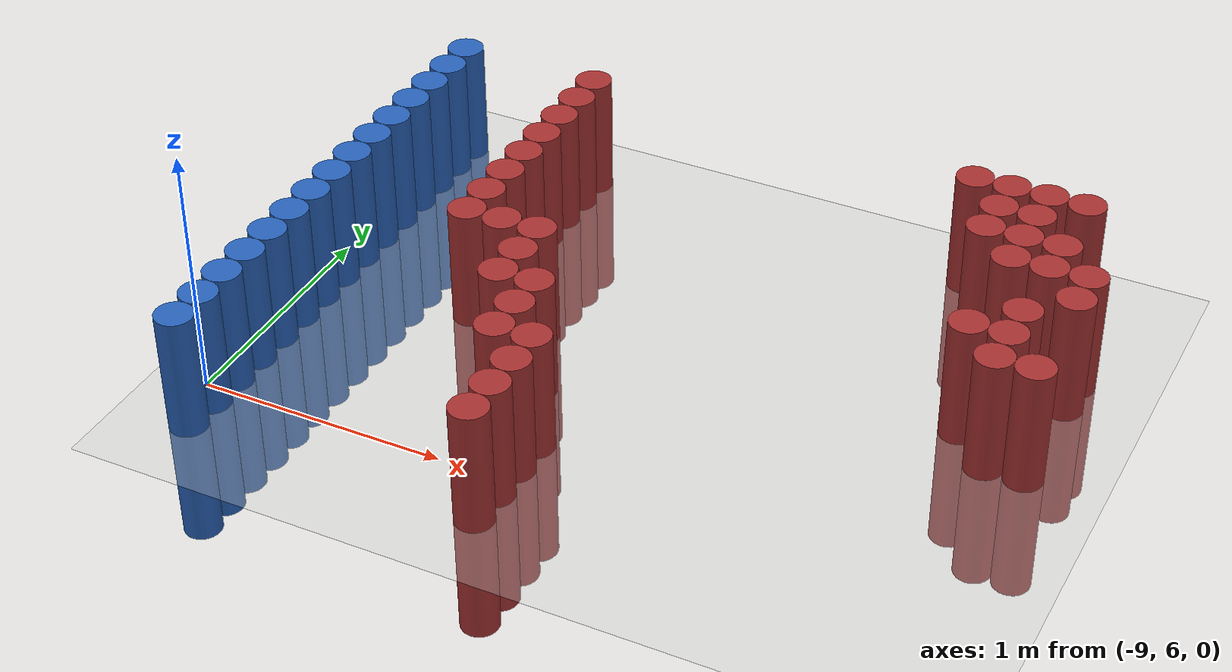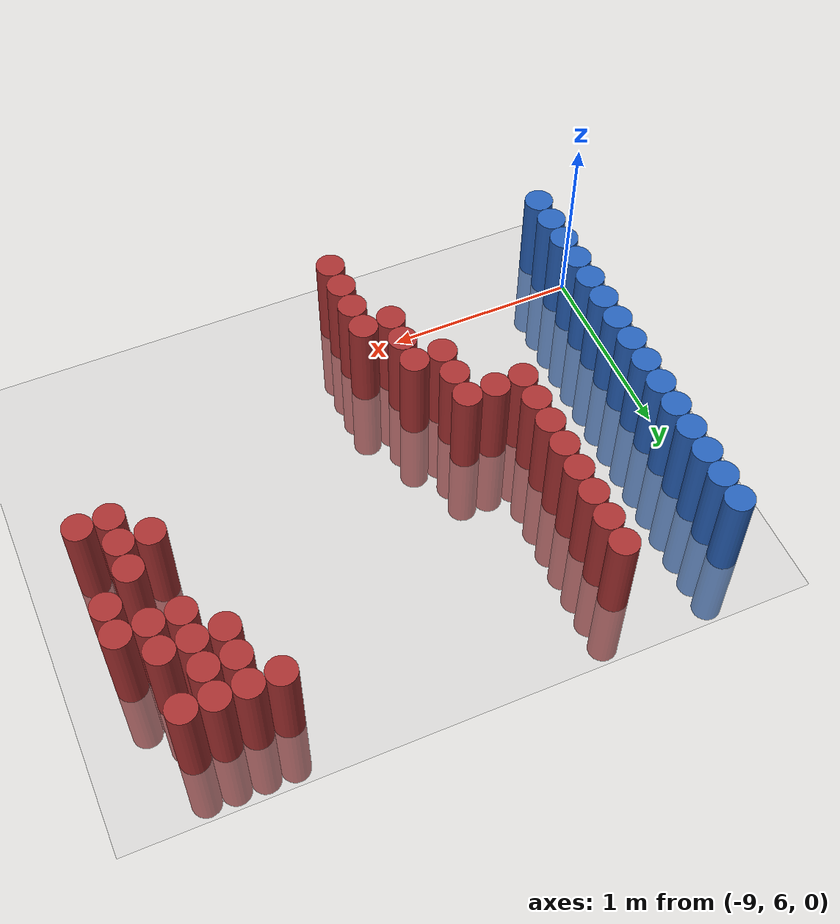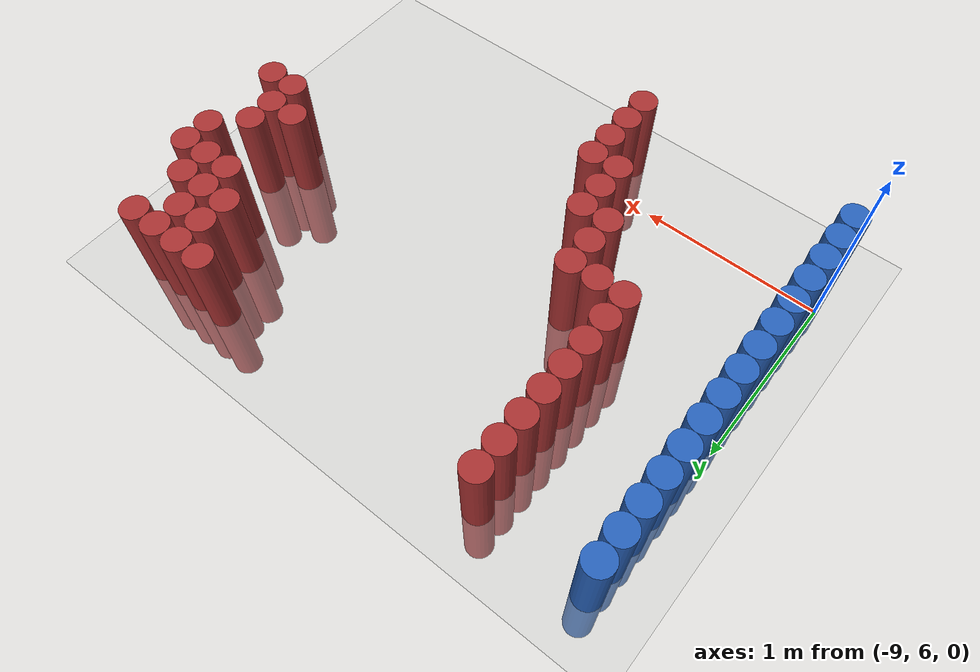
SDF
<sdf version="1.6">
 <world name="default">
  <model name="ground_plane">
   <static>1</static>
   <link name="link">
    <collision name="collision">
     <geometry><plane><normal>0 0 1</normal><size>100 100</size></plane></geometry>
     <surface><friction><ode><mu>100</mu><mu2>50</mu2></ode></friction></surface>
    </collision>
    <visual name="visual">
     <cast_shadows>0</cast_shadows>
     <geometry><plane><normal>0 0 1</normal><size>100 100</size></plane></geometry>
     <material>
      <script><uri>file://media/materials/scripts/gazebo.material</uri><name>Gazebo/Grey</name></script>
     </material>
    </visual>
   </link>
  </model>
  <model name="unit_cylinder_129">
   <static>1</static>
   <pose>-8.925000 5.775000 0.000000 0.000000 0.000000 0.000000</pose>
   <link name="link">
    <inertial>
     <mass>1</mass>
     <inertia><ixx>0.145833</ixx><ixy>0</ixy><ixz>0</ixz><iyy>0.145833</iyy><iyz>0</iyz><izz>0.125</izz></inertia>
    </inertial>
    <collision name="collision">
     <geometry><cylinder><radius>0.075000</radius><length>1</length></cylinder></geometry>
    </collision>
    <visual name="visual">
     <geometry><cylinder><radius>0.075000</radius><length>1</length></cylinder></geometry>
     <material>
      <ambient>0.152000 0.379000 0.720000 1</ambient>
      <diffuse>0.152000 0.379000 0.720000 1</diffuse>
     </material>
     <material>
      <script><name>Gazebo/Grey</name><uri>file://media/materials/scripts/gazebo.material</uri></script>
     </material>
    </visual>
   </link>
  </model>
  <model name="unit_cylinder_130">
   <static>1</static>
   <pose>-8.925000 5.925000 0.000000 0.000000 0.000000 0.000000</pose>
   <link name="link">
    <inertial>
     <mass>1</mass>
     <inertia><ixx>0.145833</ixx><ixy>0</ixy><ixz>0</ixz><iyy>0.145833</iyy><iyz>0</iyz><izz>0.125</izz></inertia>
    </inertial>
    <collision name="collision">
     <geometry><cylinder><radius>0.075000</radius><length>1</length></cylinder></geometry>
    </collision>
    <visual name="visual">
     <geometry><cylinder><radius>0.075000</radius><length>1</length></cylinder></geometry>
     <material>
      <ambient>0.152000 0.379000 0.720000 1</ambient>
      <diffuse>0.152000 0.379000 0.720000 1</diffuse>
     </material>
     <material>
      <script><name>Gazebo/Grey</name><uri>file://media/materials/scripts/gazebo.material</uri></script>
     </material>
    </visual>
   </link>
  </model>
  <model name="unit_cylinder_131">
   <static>1</static>
   <pose>-8.925000 6.075000 0.000000 0.000000 0.000000 0.000000</pose>
   <link name="link">
    <inertial>
     <mass>1</mass>
     <inertia><ixx>0.145833</ixx><ixy>0</ixy><ixz>0</ixz><iyy>0.145833</iyy><iyz>0</iyz><izz>0.125</izz></inertia>
    </inertial>
    <collision name="collision">
     <geometry><cylinder><radius>0.075000</radius><length>1</length></cylinder></geometry>
    </collision>
    <visual name="visual">
     <geometry><cylinder><radius>0.075000</radius><length>1</length></cylinder></geometry>
     <material>
      <ambient>0.152000 0.379000 0.720000 1</ambient>
      <diffuse>0.152000 0.379000 0.720000 1</diffuse>
     </material>
     <material>
      <script><name>Gazebo/Grey</name><uri>file://media/materials/scripts/gazebo.material</uri></script>
     </material>
    </visual>
   </link>
  </model>
  <model name="unit_cylinder_132">
   <static>1</static>
   <pose>-8.925000 6.225000 0.000000 0.000000 0.000000 0.000000</pose>
   <link name="link">
    <inertial>
     <mass>1</mass>
     <inertia><ixx>0.145833</ixx><ixy>0</ixy><ixz>0</ixz><iyy>0.145833</iyy><iyz>0</iyz><izz>0.125</izz></inertia>
    </inertial>
    <collision name="collision">
     <geometry><cylinder><radius>0.075000</radius><length>1</length></cylinder></geometry>
    </collision>
    <visual name="visual">
     <geometry><cylinder><radius>0.075000</radius><length>1</length></cylinder></geometry>
     <material>
      <ambient>0.152000 0.379000 0.720000 1</ambient>
      <diffuse>0.152000 0.379000 0.720000 1</diffuse>
     </material>
     <material>
      <script><name>Gazebo/Grey</name><uri>file://media/materials/scripts/gazebo.material</uri></script>
     </material>
    </visual>
   </link>
  </model>
  <model name="unit_cylinder_133">
   <static>1</static>
   <pose>-8.925000 6.375000 0.000000 0.000000 0.000000 0.000000</pose>
   <link name="link">
    <inertial>
     <mass>1</mass>
     <inertia><ixx>0.145833</ixx><ixy>0</ixy><ixz>0</ixz><iyy>0.145833</iyy><iyz>0</iyz><izz>0.125</izz></inertia>
    </inertial>
    <collision name="collision">
     <geometry><cylinder><radius>0.075000</radius><length>1</length></cylinder></geometry>
    </collision>
    <visual name="visual">
     <geometry><cylinder><radius>0.075000</radius><length>1</length></cylinder></geometry>
     <material>
      <ambient>0.152000 0.379000 0.720000 1</ambient>
      <diffuse>0.152000 0.379000 0.720000 1</diffuse>
     </material>
     <material>
      <script><name>Gazebo/Grey</name><uri>file://media/materials/scripts/gazebo.material</uri></script>
     </material>
    </visual>
   </link>
  </model>
  <model name="unit_cylinder_134">
   <static>1</static>
   <pose>-8.925000 6.525000 0.000000 0.000000 0.000000 0.000000</pose>
   <link name="link">
    <inertial>
     <mass>1</mass>
     <inertia><ixx>0.145833</ixx><ixy>0</ixy><ixz>0</ixz><iyy>0.145833</iyy><iyz>0</iyz><izz>0.125</izz></inertia>
    </inertial>
    <collision name="collision">
     <geometry><cylinder><radius>0.075000</radius><length>1</length></cylinder></geometry>
    </collision>
    <visual name="visual">
     <geometry><cylinder><radius>0.075000</radius><length>1</length></cylinder></geometry>
     <material>
      <ambient>0.152000 0.379000 0.720000 1</ambient>
      <diffuse>0.152000 0.379000 0.720000 1</diffuse>
     </material>
     <material>
      <script><name>Gazebo/Grey</name><uri>file://media/materials/scripts/gazebo.material</uri></script>
     </material>
    </visual>
   </link>
  </model>
  <model name="unit_cylinder_135">
   <static>1</static>
   <pose>-8.925000 6.675000 0.000000 0.000000 0.000000 0.000000</pose>
   <link name="link">
    <inertial>
     <mass>1</mass>
     <inertia><ixx>0.145833</ixx><ixy>0</ixy><ixz>0</ixz><iyy>0.145833</iyy><iyz>0</iyz><izz>0.125</izz></inertia>
    </inertial>
    <collision name="collision">
     <geometry><cylinder><radius>0.075000</radius><length>1</length></cylinder></geometry>
    </collision>
    <visual name="visual">
     <geometry><cylinder><radius>0.075000</radius><length>1</length></cylinder></geometry>
     <material>
      <ambient>0.152000 0.379000 0.720000 1</ambient>
      <diffuse>0.152000 0.379000 0.720000 1</diffuse>
     </material>
     <material>
      <script><name>Gazebo/Grey</name><uri>file://media/materials/scripts/gazebo.material</uri></script>
     </material>
    </visual>
   </link>
  </model>
  <model name="unit_cylinder_136">
   <static>1</static>
   <pose>-8.925000 6.825000 0.000000 0.000000 0.000000 0.000000</pose>
   <link name="link">
    <inertial>
     <mass>1</mass>
     <inertia><ixx>0.145833</ixx><ixy>0</ixy><ixz>0</ixz><iyy>0.145833</iyy><iyz>0</iyz><izz>0.125</izz></inertia>
    </inertial>
    <collision name="collision">
     <geometry><cylinder><radius>0.075000</radius><length>1</length></cylinder></geometry>
    </collision>
    <visual name="visual">
     <geometry><cylinder><radius>0.075000</radius><length>1</length></cylinder></geometry>
     <material>
      <ambient>0.152000 0.379000 0.720000 1</ambient>
      <diffuse>0.152000 0.379000 0.720000 1</diffuse>
     </material>
     <material>
      <script><name>Gazebo/Grey</name><uri>file://media/materials/scripts/gazebo.material</uri></script>
     </material>
    </visual>
   </link>
  </model>
  <model name="unit_cylinder_137">
   <static>1</static>
   <pose>-8.925000 6.975000 0.000000 0.000000 0.000000 0.000000</pose>
   <link name="link">
    <inertial>
     <mass>1</mass>
     <inertia><ixx>0.145833</ixx><ixy>0</ixy><ixz>0</ixz><iyy>0.145833</iyy><iyz>0</iyz><izz>0.125</izz></inertia>
    </inertial>
    <collision name="collision">
     <geometry><cylinder><radius>0.075000</radius><length>1</length></cylinder></geometry>
    </collision>
    <visual name="visual">
     <geometry><cylinder><radius>0.075000</radius><length>1</length></cylinder></geometry>
     <material>
      <ambient>0.152000 0.379000 0.720000 1</ambient>
      <diffuse>0.152000 0.379000 0.720000 1</diffuse>
     </material>
     <material>
      <script><name>Gazebo/Grey</name><uri>file://media/materials/scripts/gazebo.material</uri></script>
     </material>
    </visual>
   </link>
  </model>
  <model name="unit_cylinder_138">
   <static>1</static>
   <pose>-8.925000 7.125000 0.000000 0.000000 0.000000 0.000000</pose>
   <link name="link">
    <inertial>
     <mass>1</mass>
     <inertia><ixx>0.145833</ixx><ixy>0</ixy><ixz>0</ixz><iyy>0.145833</iyy><iyz>0</iyz><izz>0.125</izz></inertia>
    </inertial>
    <collision name="collision">
     <geometry><cylinder><radius>0.075000</radius><length>1</length></cylinder></geometry>
    </collision>
    <visual name="visual">
     <geometry><cylinder><radius>0.075000</radius><length>1</length></cylinder></geometry>
     <material>
      <ambient>0.152000 0.379000 0.720000 1</ambient>
      <diffuse>0.152000 0.379000 0.720000 1</diffuse>
     </material>
     <material>
      <script><name>Gazebo/Grey</name><uri>file://media/materials/scripts/gazebo.material</uri></script>
     </material>
    </visual>
   </link>
  </model>
  <model name="unit_cylinder_139">
   <static>1</static>
   <pose>-8.925000 7.275000 0.000000 0.000000 0.000000 0.000000</pose>
   <link name="link">
    <inertial>
     <mass>1</mass>
     <inertia><ixx>0.145833</ixx><ixy>0</ixy><ixz>0</ixz><iyy>0.145833</iyy><iyz>0</iyz><izz>0.125</izz></inertia>
    </inertial>
    <collision name="collision">
     <geometry><cylinder><radius>0.075000</radius><length>1</length></cylinder></geometry>
    </collision>
    <visual name="visual">
     <geometry><cylinder><radius>0.075000</radius><length>1</length></cylinder></geometry>
     <material>
      <ambient>0.152000 0.379000 0.720000 1</ambient>
      <diffuse>0.152000 0.379000 0.720000 1</diffuse>
     </material>
     <material>
      <script><name>Gazebo/Grey</name><uri>file://media/materials/scripts/gazebo.material</uri></script>
     </material>
    </visual>
   </link>
  </model>
  <model name="unit_cylinder_140">
   <static>1</static>
   <pose>-8.925000 7.425000 0.000000 0.000000 0.000000 0.000000</pose>
   <link name="link">
    <inertial>
     <mass>1</mass>
     <inertia><ixx>0.145833</ixx><ixy>0</ixy><ixz>0</ixz><iyy>0.145833</iyy><iyz>0</iyz><izz>0.125</izz></inertia>
    </inertial>
    <collision name="collision">
     <geometry><cylinder><radius>0.075000</radius><length>1</length></cylinder></geometry>
    </collision>
    <visual name="visual">
     <geometry><cylinder><radius>0.075000</radius><length>1</length></cylinder></geometry>
     <material>
      <ambient>0.152000 0.379000 0.720000 1</ambient>
      <diffuse>0.152000 0.379000 0.720000 1</diffuse>
     </material>
     <material>
      <script><name>Gazebo/Grey</name><uri>file://media/materials/scripts/gazebo.material</uri></script>
     </material>
    </visual>
   </link>
  </model>
  <model name="unit_cylinder_141">
   <static>1</static>
   <pose>-8.925000 7.575000 0.000000 0.000000 0.000000 0.000000</pose>
   <link name="link">
    <inertial>
     <mass>1</mass>
     <inertia><ixx>0.145833</ixx><ixy>0</ixy><ixz>0</ixz><iyy>0.145833</iyy><iyz>0</iyz><izz>0.125</izz></inertia>
    </inertial>
    <collision name="collision">
     <geometry><cylinder><radius>0.075000</radius><length>1</length></cylinder></geometry>
    </collision>
    <visual name="visual">
     <geometry><cylinder><radius>0.075000</radius><length>1</length></cylinder></geometry>
     <material>
      <ambient>0.152000 0.379000 0.720000 1</ambient>
      <diffuse>0.152000 0.379000 0.720000 1</diffuse>
     </material>
     <material>
      <script><name>Gazebo/Grey</name><uri>file://media/materials/scripts/gazebo.material</uri></script>
     </material>
    </visual>
   </link>
  </model>
  <model name="unit_cylinder_142">
   <static>1</static>
   <pose>-8.925000 7.725000 0.000000 0.000000 0.000000 0.000000</pose>
   <link name="link">
    <inertial>
     <mass>1</mass>
     <inertia><ixx>0.145833</ixx><ixy>0</ixy><ixz>0</ixz><iyy>0.145833</iyy><iyz>0</iyz><izz>0.125</izz></inertia>
    </inertial>
    <collision name="collision">
     <geometry><cylinder><radius>0.075000</radius><length>1</length></cylinder></geometry>
    </collision>
    <visual name="visual">
     <geometry><cylinder><radius>0.075000</radius><length>1</length></cylinder></geometry>
     <material>
      <ambient>0.152000 0.379000 0.720000 1</ambient>
      <diffuse>0.152000 0.379000 0.720000 1</diffuse>
     </material>
     <material>
      <script><name>Gazebo/Grey</name><uri>file://media/materials/scripts/gazebo.material</uri></script>
     </material>
    </visual>
   </link>
  </model>
  <model name="unit_cylinder_143">
   <static>1</static>
   <pose>-8.925000 7.875000 0.000000 0.000000 0.000000 0.000000</pose>
   <link name="link">
    <inertial>
     <mass>1</mass>
     <inertia><ixx>0.145833</ixx><ixy>0</ixy><ixz>0</ixz><iyy>0.145833</iyy><iyz>0</iyz><izz>0.125</izz></inertia>
    </inertial>
    <collision name="collision">
     <geometry><cylinder><radius>0.075000</radius><length>1</length></cylinder></geometry>
    </collision>
    <visual name="visual">
     <geometry><cylinder><radius>0.075000</radius><length>1</length></cylinder></geometry>
     <material>
      <ambient>0.152000 0.379000 0.720000 1</ambient>
      <diffuse>0.152000 0.379000 0.720000 1</diffuse>
     </material>
     <material>
      <script><name>Gazebo/Grey</name><uri>file://media/materials/scripts/gazebo.material</uri></script>
     </material>
    </visual>
   </link>
  </model>
  <model name="unit_cylinder_162">
   <static>1</static>
   <pose>-8.325000 6.825000 0.000000 0.000000 0.000000 0.000000</pose>
   <link name="link">
    <inertial>
     <mass>1</mass>
     <inertia><ixx>0.145833</ixx><ixy>0</ixy><ixz>0</ixz><iyy>0.145833</iyy><iyz>0</iyz><izz>0.125</izz></inertia>
    </inertial>
    <collision name="collision">
     <geometry><cylinder><radius>0.075000</radius><length>1</length></cylinder></geometry>
    </collision>
    <visual name="visual">
     <geometry><cylinder><radius>0.075000</radius><length>1</length></cylinder></geometry>
     <material>
      <ambient>0.648000 0.192000 0.192000 1</ambient>
      <diffuse>0.648000 0.192000 0.192000 1</diffuse>
     </material>
     <material>
      <script><name>Gazebo/Grey</name><uri>file://media/materials/scripts/gazebo.material</uri></script>
     </material>
    </visual>
   </link>
  </model>
  <model name="unit_cylinder_163">
   <static>1</static>
   <pose>-8.325000 6.975000 0.000000 0.000000 0.000000 0.000000</pose>
   <link name="link">
    <inertial>
     <mass>1</mass>
     <inertia><ixx>0.145833</ixx><ixy>0</ixy><ixz>0</ixz><iyy>0.145833</iyy><iyz>0</iyz><izz>0.125</izz></inertia>
    </inertial>
    <collision name="collision">
     <geometry><cylinder><radius>0.075000</radius><length>1</length></cylinder></geometry>
    </collision>
    <visual name="visual">
     <geometry><cylinder><radius>0.075000</radius><length>1</length></cylinder></geometry>
     <material>
      <ambient>0.648000 0.192000 0.192000 1</ambient>
      <diffuse>0.648000 0.192000 0.192000 1</diffuse>
     </material>
     <material>
      <script><name>Gazebo/Grey</name><uri>file://media/materials/scripts/gazebo.material</uri></script>
     </material>
    </visual>
   </link>
  </model>
  <model name="unit_cylinder_164">
   <static>1</static>
   <pose>-8.325000 7.125000 0.000000 0.000000 0.000000 0.000000</pose>
   <link name="link">
    <inertial>
     <mass>1</mass>
     <inertia><ixx>0.145833</ixx><ixy>0</ixy><ixz>0</ixz><iyy>0.145833</iyy><iyz>0</iyz><izz>0.125</izz></inertia>
    </inertial>
    <collision name="collision">
     <geometry><cylinder><radius>0.075000</radius><length>1</length></cylinder></geometry>
    </collision>
    <visual name="visual">
     <geometry><cylinder><radius>0.075000</radius><length>1</length></cylinder></geometry>
     <material>
      <ambient>0.648000 0.192000 0.192000 1</ambient>
      <diffuse>0.648000 0.192000 0.192000 1</diffuse>
     </material>
     <material>
      <script><name>Gazebo/Grey</name><uri>file://media/materials/scripts/gazebo.material</uri></script>
     </material>
    </visual>
   </link>
  </model>
  <model name="unit_cylinder_165">
   <static>1</static>
   <pose>-8.325000 7.275000 0.000000 0.000000 0.000000 0.000000</pose>
   <link name="link">
    <inertial>
     <mass>1</mass>
     <inertia><ixx>0.145833</ixx><ixy>0</ixy><ixz>0</ixz><iyy>0.145833</iyy><iyz>0</iyz><izz>0.125</izz></inertia>
    </inertial>
    <collision name="collision">
     <geometry><cylinder><radius>0.075000</radius><length>1</length></cylinder></geometry>
    </collision>
    <visual name="visual">
     <geometry><cylinder><radius>0.075000</radius><length>1</length></cylinder></geometry>
     <material>
      <ambient>0.648000 0.192000 0.192000 1</ambient>
      <diffuse>0.648000 0.192000 0.192000 1</diffuse>
     </material>
     <material>
      <script><name>Gazebo/Grey</name><uri>file://media/materials/scripts/gazebo.material</uri></script>
     </material>
    </visual>
   </link>
  </model>
  <model name="unit_cylinder_166">
   <static>1</static>
   <pose>-8.325000 7.425000 0.000000 0.000000 0.000000 0.000000</pose>
   <link name="link">
    <inertial>
     <mass>1</mass>
     <inertia><ixx>0.145833</ixx><ixy>0</ixy><ixz>0</ixz><iyy>0.145833</iyy><iyz>0</iyz><izz>0.125</izz></inertia>
    </inertial>
    <collision name="collision">
     <geometry><cylinder><radius>0.075000</radius><length>1</length></cylinder></geometry>
    </collision>
    <visual name="visual">
     <geometry><cylinder><radius>0.075000</radius><length>1</length></cylinder></geometry>
     <material>
      <ambient>0.648000 0.192000 0.192000 1</ambient>
      <diffuse>0.648000 0.192000 0.192000 1</diffuse>
     </material>
     <material>
      <script><name>Gazebo/Grey</name><uri>file://media/materials/scripts/gazebo.material</uri></script>
     </material>
    </visual>
   </link>
  </model>
  <model name="unit_cylinder_167">
   <static>1</static>
   <pose>-8.325000 7.575000 0.000000 0.000000 0.000000 0.000000</pose>
   <link name="link">
    <inertial>
     <mass>1</mass>
     <inertia><ixx>0.145833</ixx><ixy>0</ixy><ixz>0</ixz><iyy>0.145833</iyy><iyz>0</iyz><izz>0.125</izz></inertia>
    </inertial>
    <collision name="collision">
     <geometry><cylinder><radius>0.075000</radius><length>1</length></cylinder></geometry>
    </collision>
    <visual name="visual">
     <geometry><cylinder><radius>0.075000</radius><length>1</length></cylinder></geometry>
     <material>
      <ambient>0.648000 0.192000 0.192000 1</ambient>
      <diffuse>0.648000 0.192000 0.192000 1</diffuse>
     </material>
     <material>
      <script><name>Gazebo/Grey</name><uri>file://media/materials/scripts/gazebo.material</uri></script>
     </material>
    </visual>
   </link>
  </model>
  <model name="unit_cylinder_168">
   <static>1</static>
   <pose>-8.325000 7.725000 0.000000 0.000000 0.000000 0.000000</pose>
   <link name="link">
    <inertial>
     <mass>1</mass>
     <inertia><ixx>0.145833</ixx><ixy>0</ixy><ixz>0</ixz><iyy>0.145833</iyy><iyz>0</iyz><izz>0.125</izz></inertia>
    </inertial>
    <collision name="collision">
     <geometry><cylinder><radius>0.075000</radius><length>1</length></cylinder></geometry>
    </collision>
    <visual name="visual">
     <geometry><cylinder><radius>0.075000</radius><length>1</length></cylinder></geometry>
     <material>
      <ambient>0.648000 0.192000 0.192000 1</ambient>
      <diffuse>0.648000 0.192000 0.192000 1</diffuse>
     </material>
     <material>
      <script><name>Gazebo/Grey</name><uri>file://media/materials/scripts/gazebo.material</uri></script>
     </material>
    </visual>
   </link>
  </model>
  <model name="unit_cylinder_169">
   <static>1</static>
   <pose>-8.325000 7.875000 0.000000 0.000000 0.000000 0.000000</pose>
   <link name="link">
    <inertial>
     <mass>1</mass>
     <inertia><ixx>0.145833</ixx><ixy>0</ixy><ixz>0</ixz><iyy>0.145833</iyy><iyz>0</iyz><izz>0.125</izz></inertia>
    </inertial>
    <collision name="collision">
     <geometry><cylinder><radius>0.075000</radius><length>1</length></cylinder></geometry>
    </collision>
    <visual name="visual">
     <geometry><cylinder><radius>0.075000</radius><length>1</length></cylinder></geometry>
     <material>
      <ambient>0.648000 0.192000 0.192000 1</ambient>
      <diffuse>0.648000 0.192000 0.192000 1</diffuse>
     </material>
     <material>
      <script><name>Gazebo/Grey</name><uri>file://media/materials/scripts/gazebo.material</uri></script>
     </material>
    </visual>
   </link>
  </model>
  <model name="unit_cylinder_182">
   <static>1</static>
   <pose>-8.175000 6.825000 0.000000 0.000000 0.000000 0.000000</pose>
   <link name="link">
    <inertial>
     <mass>1</mass>
     <inertia><ixx>0.145833</ixx><ixy>0</ixy><ixz>0</ixz><iyy>0.145833</iyy><iyz>0</iyz><izz>0.125</izz></inertia>
    </inertial>
    <collision name="collision">
     <geometry><cylinder><radius>0.075000</radius><length>1</length></cylinder></geometry>
    </collision>
    <visual name="visual">
     <geometry><cylinder><radius>0.075000</radius><length>1</length></cylinder></geometry>
     <material>
      <ambient>0.648000 0.192000 0.192000 1</ambient>
      <diffuse>0.648000 0.192000 0.192000 1</diffuse>
     </material>
     <material>
      <script><name>Gazebo/Grey</name><uri>file://media/materials/scripts/gazebo.material</uri></script>
     </material>
    </visual>
   </link>
  </model>
  <model name="unit_cylinder_184">
   <static>1</static>
   <pose>-8.025000 6.525000 0.000000 0.000000 0.000000 0.000000</pose>
   <link name="link">
    <inertial>
     <mass>1</mass>
     <inertia><ixx>0.145833</ixx><ixy>0</ixy><ixz>0</ixz><iyy>0.145833</iyy><iyz>0</iyz><izz>0.125</izz></inertia>
    </inertial>
    <collision name="collision">
     <geometry><cylinder><radius>0.075000</radius><length>1</length></cylinder></geometry>
    </collision>
    <visual name="visual">
     <geometry><cylinder><radius>0.075000</radius><length>1</length></cylinder></geometry>
     <material>
      <ambient>0.648000 0.192000 0.192000 1</ambient>
      <diffuse>0.648000 0.192000 0.192000 1</diffuse>
     </material>
     <material>
      <script><name>Gazebo/Grey</name><uri>file://media/materials/scripts/gazebo.material</uri></script>
     </material>
    </visual>
   </link>
  </model>
  <model name="unit_cylinder_185">
   <static>1</static>
   <pose>-8.025000 6.675000 0.000000 0.000000 0.000000 0.000000</pose>
   <link name="link">
    <inertial>
     <mass>1</mass>
     <inertia><ixx>0.145833</ixx><ixy>0</ixy><ixz>0</ixz><iyy>0.145833</iyy><iyz>0</iyz><izz>0.125</izz></inertia>
    </inertial>
    <collision name="collision">
     <geometry><cylinder><radius>0.075000</radius><length>1</length></cylinder></geometry>
    </collision>
    <visual name="visual">
     <geometry><cylinder><radius>0.075000</radius><length>1</length></cylinder></geometry>
     <material>
      <ambient>0.648000 0.192000 0.192000 1</ambient>
      <diffuse>0.648000 0.192000 0.192000 1</diffuse>
     </material>
     <material>
      <script><name>Gazebo/Grey</name><uri>file://media/materials/scripts/gazebo.material</uri></script>
     </material>
    </visual>
   </link>
  </model>
  <model name="unit_cylinder_186">
   <static>1</static>
   <pose>-8.025000 6.825000 0.000000 0.000000 0.000000 0.000000</pose>
   <link name="link">
    <inertial>
     <mass>1</mass>
     <inertia><ixx>0.145833</ixx><ixy>0</ixy><ixz>0</ixz><iyy>0.145833</iyy><iyz>0</iyz><izz>0.125</izz></inertia>
    </inertial>
    <collision name="collision">
     <geometry><cylinder><radius>0.075000</radius><length>1</length></cylinder></geometry>
    </collision>
    <visual name="visual">
     <geometry><cylinder><radius>0.075000</radius><length>1</length></cylinder></geometry>
     <material>
      <ambient>0.648000 0.192000 0.192000 1</ambient>
      <diffuse>0.648000 0.192000 0.192000 1</diffuse>
     </material>
     <material>
      <script><name>Gazebo/Grey</name><uri>file://media/materials/scripts/gazebo.material</uri></script>
     </material>
    </visual>
   </link>
  </model>
  <model name="unit_cylinder_188">
   <static>1</static>
   <pose>-7.875000 6.225000 0.000000 0.000000 0.000000 0.000000</pose>
   <link name="link">
    <inertial>
     <mass>1</mass>
     <inertia><ixx>0.145833</ixx><ixy>0</ixy><ixz>0</ixz><iyy>0.145833</iyy><iyz>0</iyz><izz>0.125</izz></inertia>
    </inertial>
    <collision name="collision">
     <geometry><cylinder><radius>0.075000</radius><length>1</length></cylinder></geometry>
    </collision>
    <visual name="visual">
     <geometry><cylinder><radius>0.075000</radius><length>1</length></cylinder></geometry>
     <material>
      <ambient>0.648000 0.192000 0.192000 1</ambient>
      <diffuse>0.648000 0.192000 0.192000 1</diffuse>
     </material>
     <material>
      <script><name>Gazebo/Grey</name><uri>file://media/materials/scripts/gazebo.material</uri></script>
     </material>
    </visual>
   </link>
  </model>
  <model name="unit_cylinder_189">
   <static>1</static>
   <pose>-7.875000 6.375000 0.000000 0.000000 0.000000 0.000000</pose>
   <link name="link">
    <inertial>
     <mass>1</mass>
     <inertia><ixx>0.145833</ixx><ixy>0</ixy><ixz>0</ixz><iyy>0.145833</iyy><iyz>0</iyz><izz>0.125</izz></inertia>
    </inertial>
    <collision name="collision">
     <geometry><cylinder><radius>0.075000</radius><length>1</length></cylinder></geometry>
    </collision>
    <visual name="visual">
     <geometry><cylinder><radius>0.075000</radius><length>1</length></cylinder></geometry>
     <material>
      <ambient>0.648000 0.192000 0.192000 1</ambient>
      <diffuse>0.648000 0.192000 0.192000 1</diffuse>
     </material>
     <material>
      <script><name>Gazebo/Grey</name><uri>file://media/materials/scripts/gazebo.material</uri></script>
     </material>
    </visual>
   </link>
  </model>
  <model name="unit_cylinder_190">
   <static>1</static>
   <pose>-7.875000 6.525000 0.000000 0.000000 0.000000 0.000000</pose>
   <link name="link">
    <inertial>
     <mass>1</mass>
     <inertia><ixx>0.145833</ixx><ixy>0</ixy><ixz>0</ixz><iyy>0.145833</iyy><iyz>0</iyz><izz>0.125</izz></inertia>
    </inertial>
    <collision name="collision">
     <geometry><cylinder><radius>0.075000</radius><length>1</length></cylinder></geometry>
    </collision>
    <visual name="visual">
     <geometry><cylinder><radius>0.075000</radius><length>1</length></cylinder></geometry>
     <material>
      <ambient>0.648000 0.192000 0.192000 1</ambient>
      <diffuse>0.648000 0.192000 0.192000 1</diffuse>
     </material>
     <material>
      <script><name>Gazebo/Grey</name><uri>file://media/materials/scripts/gazebo.material</uri></script>
     </material>
    </visual>
   </link>
  </model>
  <model name="unit_cylinder_193">
   <static>1</static>
   <pose>-7.725000 5.775000 0.000000 0.000000 0.000000 0.000000</pose>
   <link name="link">
    <inertial>
     <mass>1</mass>
     <inertia><ixx>0.145833</ixx><ixy>0</ixy><ixz>0</ixz><iyy>0.145833</iyy><iyz>0</iyz><izz>0.125</izz></inertia>
    </inertial>
    <collision name="collision">
     <geometry><cylinder><radius>0.075000</radius><length>1</length></cylinder></geometry>
    </collision>
    <visual name="visual">
     <geometry><cylinder><radius>0.075000</radius><length>1</length></cylinder></geometry>
     <material>
      <ambient>0.648000 0.192000 0.192000 1</ambient>
      <diffuse>0.648000 0.192000 0.192000 1</diffuse>
     </material>
     <material>
      <script><name>Gazebo/Grey</name><uri>file://media/materials/scripts/gazebo.material</uri></script>
     </material>
    </visual>
   </link>
  </model>
  <model name="unit_cylinder_194">
   <static>1</static>
   <pose>-7.725000 5.925000 0.000000 0.000000 0.000000 0.000000</pose>
   <link name="link">
    <inertial>
     <mass>1</mass>
     <inertia><ixx>0.145833</ixx><ixy>0</ixy><ixz>0</ixz><iyy>0.145833</iyy><iyz>0</iyz><izz>0.125</izz></inertia>
    </inertial>
    <collision name="collision">
     <geometry><cylinder><radius>0.075000</radius><length>1</length></cylinder></geometry>
    </collision>
    <visual name="visual">
     <geometry><cylinder><radius>0.075000</radius><length>1</length></cylinder></geometry>
     <material>
      <ambient>0.648000 0.192000 0.192000 1</ambient>
      <diffuse>0.648000 0.192000 0.192000 1</diffuse>
     </material>
     <material>
      <script><name>Gazebo/Grey</name><uri>file://media/materials/scripts/gazebo.material</uri></script>
     </material>
    </visual>
   </link>
  </model>
  <model name="unit_cylinder_195">
   <static>1</static>
   <pose>-7.725000 6.075000 0.000000 0.000000 0.000000 0.000000</pose>
   <link name="link">
    <inertial>
     <mass>1</mass>
     <inertia><ixx>0.145833</ixx><ixy>0</ixy><ixz>0</ixz><iyy>0.145833</iyy><iyz>0</iyz><izz>0.125</izz></inertia>
    </inertial>
    <collision name="collision">
     <geometry><cylinder><radius>0.075000</radius><length>1</length></cylinder></geometry>
    </collision>
    <visual name="visual">
     <geometry><cylinder><radius>0.075000</radius><length>1</length></cylinder></geometry>
     <material>
      <ambient>0.648000 0.192000 0.192000 1</ambient>
      <diffuse>0.648000 0.192000 0.192000 1</diffuse>
     </material>
     <material>
      <script><name>Gazebo/Grey</name><uri>file://media/materials/scripts/gazebo.material</uri></script>
     </material>
    </visual>
   </link>
  </model>
  <model name="unit_cylinder_196">
   <static>1</static>
   <pose>-7.725000 6.225000 0.000000 0.000000 0.000000 0.000000</pose>
   <link name="link">
    <inertial>
     <mass>1</mass>
     <inertia><ixx>0.145833</ixx><ixy>0</ixy><ixz>0</ixz><iyy>0.145833</iyy><iyz>0</iyz><izz>0.125</izz></inertia>
    </inertial>
    <collision name="collision">
     <geometry><cylinder><radius>0.075000</radius><length>1</length></cylinder></geometry>
    </collision>
    <visual name="visual">
     <geometry><cylinder><radius>0.075000</radius><length>1</length></cylinder></geometry>
     <material>
      <ambient>0.648000 0.192000 0.192000 1</ambient>
      <diffuse>0.648000 0.192000 0.192000 1</diffuse>
     </material>
     <material>
      <script><name>Gazebo/Grey</name><uri>file://media/materials/scripts/gazebo.material</uri></script>
     </material>
    </visual>
   </link>
  </model>
  <model name="unit_cylinder_224">
   <static>1</static>
   <pose>-6.675000 7.875000 0.000000 0.000000 0.000000 0.000000</pose>
   <link name="link">
    <inertial>
     <mass>1</mass>
     <inertia><ixx>0.145833</ixx><ixy>0</ixy><ixz>0</ixz><iyy>0.145833</iyy><iyz>0</iyz><izz>0.125</izz></inertia>
    </inertial>
    <collision name="collision">
     <geometry><cylinder><radius>0.075000</radius><length>1</length></cylinder></geometry>
    </collision>
    <visual name="visual">
     <geometry><cylinder><radius>0.075000</radius><length>1</length></cylinder></geometry>
     <material>
      <ambient>0.648000 0.192000 0.192000 1</ambient>
      <diffuse>0.648000 0.192000 0.192000 1</diffuse>
     </material>
     <material>
      <script><name>Gazebo/Grey</name><uri>file://media/materials/scripts/gazebo.material</uri></script>
     </material>
    </visual>
   </link>
  </model>
  <model name="unit_cylinder_230">
   <static>1</static>
   <pose>-6.525000 7.575000 0.000000 0.000000 0.000000 0.000000</pose>
   <link name="link">
    <inertial>
     <mass>1</mass>
     <inertia><ixx>0.145833</ixx><ixy>0</ixy><ixz>0</ixz><iyy>0.145833</iyy><iyz>0</iyz><izz>0.125</izz></inertia>
    </inertial>
    <collision name="collision">
     <geometry><cylinder><radius>0.075000</radius><length>1</length></cylinder></geometry>
    </collision>
    <visual name="visual">
     <geometry><cylinder><radius>0.075000</radius><length>1</length></cylinder></geometry>
     <material>
      <ambient>0.648000 0.192000 0.192000 1</ambient>
      <diffuse>0.648000 0.192000 0.192000 1</diffuse>
     </material>
     <material>
      <script><name>Gazebo/Grey</name><uri>file://media/materials/scripts/gazebo.material</uri></script>
     </material>
    </visual>
   </link>
  </model>
  <model name="unit_cylinder_231">
   <static>1</static>
   <pose>-6.525000 7.725000 0.000000 0.000000 0.000000 0.000000</pose>
   <link name="link">
    <inertial>
     <mass>1</mass>
     <inertia><ixx>0.145833</ixx><ixy>0</ixy><ixz>0</ixz><iyy>0.145833</iyy><iyz>0</iyz><izz>0.125</izz></inertia>
    </inertial>
    <collision name="collision">
     <geometry><cylinder><radius>0.075000</radius><length>1</length></cylinder></geometry>
    </collision>
    <visual name="visual">
     <geometry><cylinder><radius>0.075000</radius><length>1</length></cylinder></geometry>
     <material>
      <ambient>0.648000 0.192000 0.192000 1</ambient>
      <diffuse>0.648000 0.192000 0.192000 1</diffuse>
     </material>
     <material>
      <script><name>Gazebo/Grey</name><uri>file://media/materials/scripts/gazebo.material</uri></script>
     </material>
    </visual>
   </link>
  </model>
  <model name="unit_cylinder_232">
   <static>1</static>
   <pose>-6.525000 7.875000 0.000000 0.000000 0.000000 0.000000</pose>
   <link name="link">
    <inertial>
     <mass>1</mass>
     <inertia><ixx>0.145833</ixx><ixy>0</ixy><ixz>0</ixz><iyy>0.145833</iyy><iyz>0</iyz><izz>0.125</izz></inertia>
    </inertial>
    <collision name="collision">
     <geometry><cylinder><radius>0.075000</radius><length>1</length></cylinder></geometry>
    </collision>
    <visual name="visual">
     <geometry><cylinder><radius>0.075000</radius><length>1</length></cylinder></geometry>
     <material>
      <ambient>0.648000 0.192000 0.192000 1</ambient>
      <diffuse>0.648000 0.192000 0.192000 1</diffuse>
     </material>
     <material>
      <script><name>Gazebo/Grey</name><uri>file://media/materials/scripts/gazebo.material</uri></script>
     </material>
    </visual>
   </link>
  </model>
  <model name="unit_cylinder_240">
   <static>1</static>
   <pose>-6.375000 6.975000 0.000000 0.000000 0.000000 0.000000</pose>
   <link name="link">
    <inertial>
     <mass>1</mass>
     <inertia><ixx>0.145833</ixx><ixy>0</ixy><ixz>0</ixz><iyy>0.145833</iyy><iyz>0</iyz><izz>0.125</izz></inertia>
    </inertial>
    <collision name="collision">
     <geometry><cylinder><radius>0.075000</radius><length>1</length></cylinder></geometry>
    </collision>
    <visual name="visual">
     <geometry><cylinder><radius>0.075000</radius><length>1</length></cylinder></geometry>
     <material>
      <ambient>0.648000 0.192000 0.192000 1</ambient>
      <diffuse>0.648000 0.192000 0.192000 1</diffuse>
     </material>
     <material>
      <script><name>Gazebo/Grey</name><uri>file://media/materials/scripts/gazebo.material</uri></script>
     </material>
    </visual>
   </link>
  </model>
  <model name="unit_cylinder_241">
   <static>1</static>
   <pose>-6.375000 7.425000 0.000000 0.000000 0.000000 0.000000</pose>
   <link name="link">
    <inertial>
     <mass>1</mass>
     <inertia><ixx>0.145833</ixx><ixy>0</ixy><ixz>0</ixz><iyy>0.145833</iyy><iyz>0</iyz><izz>0.125</izz></inertia>
    </inertial>
    <collision name="collision">
     <geometry><cylinder><radius>0.075000</radius><length>1</length></cylinder></geometry>
    </collision>
    <visual name="visual">
     <geometry><cylinder><radius>0.075000</radius><length>1</length></cylinder></geometry>
     <material>
      <ambient>0.648000 0.192000 0.192000 1</ambient>
      <diffuse>0.648000 0.192000 0.192000 1</diffuse>
     </material>
     <material>
      <script><name>Gazebo/Grey</name><uri>file://media/materials/scripts/gazebo.material</uri></script>
     </material>
    </visual>
   </link>
  </model>
  <model name="unit_cylinder_242">
   <static>1</static>
   <pose>-6.375000 7.575000 0.000000 0.000000 0.000000 0.000000</pose>
   <link name="link">
    <inertial>
     <mass>1</mass>
     <inertia><ixx>0.145833</ixx><ixy>0</ixy><ixz>0</ixz><iyy>0.145833</iyy><iyz>0</iyz><izz>0.125</izz></inertia>
    </inertial>
    <collision name="collision">
     <geometry><cylinder><radius>0.075000</radius><length>1</length></cylinder></geometry>
    </collision>
    <visual name="visual">
     <geometry><cylinder><radius>0.075000</radius><length>1</length></cylinder></geometry>
     <material>
      <ambient>0.648000 0.192000 0.192000 1</ambient>
      <diffuse>0.648000 0.192000 0.192000 1</diffuse>
     </material>
     <material>
      <script><name>Gazebo/Grey</name><uri>file://media/materials/scripts/gazebo.material</uri></script>
     </material>
    </visual>
   </link>
  </model>
  <model name="unit_cylinder_243">
   <static>1</static>
   <pose>-6.375000 7.725000 0.000000 0.000000 0.000000 0.000000</pose>
   <link name="link">
    <inertial>
     <mass>1</mass>
     <inertia><ixx>0.145833</ixx><ixy>0</ixy><ixz>0</ixz><iyy>0.145833</iyy><iyz>0</iyz><izz>0.125</izz></inertia>
    </inertial>
    <collision name="collision">
     <geometry><cylinder><radius>0.075000</radius><length>1</length></cylinder></geometry>
    </collision>
    <visual name="visual">
     <geometry><cylinder><radius>0.075000</radius><length>1</length></cylinder></geometry>
     <material>
      <ambient>0.648000 0.192000 0.192000 1</ambient>
      <diffuse>0.648000 0.192000 0.192000 1</diffuse>
     </material>
     <material>
      <script><name>Gazebo/Grey</name><uri>file://media/materials/scripts/gazebo.material</uri></script>
     </material>
    </visual>
   </link>
  </model>
  <model name="unit_cylinder_244">
   <static>1</static>
   <pose>-6.375000 7.875000 0.000000 0.000000 0.000000 0.000000</pose>
   <link name="link">
    <inertial>
     <mass>1</mass>
     <inertia><ixx>0.145833</ixx><ixy>0</ixy><ixz>0</ixz><iyy>0.145833</iyy><iyz>0</iyz><izz>0.125</izz></inertia>
    </inertial>
    <collision name="collision">
     <geometry><cylinder><radius>0.075000</radius><length>1</length></cylinder></geometry>
    </collision>
    <visual name="visual">
     <geometry><cylinder><radius>0.075000</radius><length>1</length></cylinder></geometry>
     <material>
      <ambient>0.648000 0.192000 0.192000 1</ambient>
      <diffuse>0.648000 0.192000 0.192000 1</diffuse>
     </material>
     <material>
      <script><name>Gazebo/Grey</name><uri>file://media/materials/scripts/gazebo.material</uri></script>
     </material>
    </visual>
   </link>
  </model>
  <model name="unit_cylinder_251">
   <static>1</static>
   <pose>-6.225000 6.825000 0.000000 0.000000 0.000000 0.000000</pose>
   <link name="link">
    <inertial>
     <mass>1</mass>
     <inertia><ixx>0.145833</ixx><ixy>0</ixy><ixz>0</ixz><iyy>0.145833</iyy><iyz>0</iyz><izz>0.125</izz></inertia>
    </inertial>
    <collision name="collision">
     <geometry><cylinder><radius>0.075000</radius><length>1</length></cylinder></geometry>
    </collision>
    <visual name="visual">
     <geometry><cylinder><radius>0.075000</radius><length>1</length></cylinder></geometry>
     <material>
      <ambient>0.648000 0.192000 0.192000 1</ambient>
      <diffuse>0.648000 0.192000 0.192000 1</diffuse>
     </material>
     <material>
      <script><name>Gazebo/Grey</name><uri>file://media/materials/scripts/gazebo.material</uri></script>
     </material>
    </visual>
   </link>
  </model>
  <model name="unit_cylinder_252">
   <static>1</static>
   <pose>-6.225000 6.975000 0.000000 0.000000 0.000000 0.000000</pose>
   <link name="link">
    <inertial>
     <mass>1</mass>
     <inertia><ixx>0.145833</ixx><ixy>0</ixy><ixz>0</ixz><iyy>0.145833</iyy><iyz>0</iyz><izz>0.125</izz></inertia>
    </inertial>
    <collision name="collision">
     <geometry><cylinder><radius>0.075000</radius><length>1</length></cylinder></geometry>
    </collision>
    <visual name="visual">
     <geometry><cylinder><radius>0.075000</radius><length>1</length></cylinder></geometry>
     <material>
      <ambient>0.648000 0.192000 0.192000 1</ambient>
      <diffuse>0.648000 0.192000 0.192000 1</diffuse>
     </material>
     <material>
      <script><name>Gazebo/Grey</name><uri>file://media/materials/scripts/gazebo.material</uri></script>
     </material>
    </visual>
   </link>
  </model>
  <model name="unit_cylinder_253">
   <static>1</static>
   <pose>-6.225000 7.125000 0.000000 0.000000 0.000000 0.000000</pose>
   <link name="link">
    <inertial>
     <mass>1</mass>
     <inertia><ixx>0.145833</ixx><ixy>0</ixy><ixz>0</ixz><iyy>0.145833</iyy><iyz>0</iyz><izz>0.125</izz></inertia>
    </inertial>
    <collision name="collision">
     <geometry><cylinder><radius>0.075000</radius><length>1</length></cylinder></geometry>
    </collision>
    <visual name="visual">
     <geometry><cylinder><radius>0.075000</radius><length>1</length></cylinder></geometry>
     <material>
      <ambient>0.648000 0.192000 0.192000 1</ambient>
      <diffuse>0.648000 0.192000 0.192000 1</diffuse>
     </material>
     <material>
      <script><name>Gazebo/Grey</name><uri>file://media/materials/scripts/gazebo.material</uri></script>
     </material>
    </visual>
   </link>
  </model>
  <model name="unit_cylinder_254">
   <static>1</static>
   <pose>-6.225000 7.425000 0.000000 0.000000 0.000000 0.000000</pose>
   <link name="link">
    <inertial>
     <mass>1</mass>
     <inertia><ixx>0.145833</ixx><ixy>0</ixy><ixz>0</ixz><iyy>0.145833</iyy><iyz>0</iyz><izz>0.125</izz></inertia>
    </inertial>
    <collision name="collision">
     <geometry><cylinder><radius>0.075000</radius><length>1</length></cylinder></geometry>
    </collision>
    <visual name="visual">
     <geometry><cylinder><radius>0.075000</radius><length>1</length></cylinder></geometry>
     <material>
      <ambient>0.648000 0.192000 0.192000 1</ambient>
      <diffuse>0.648000 0.192000 0.192000 1</diffuse>
     </material>
     <material>
      <script><name>Gazebo/Grey</name><uri>file://media/materials/scripts/gazebo.material</uri></script>
     </material>
    </visual>
   </link>
  </model>
  <model name="unit_cylinder_255">
   <static>1</static>
   <pose>-6.225000 7.575000 0.000000 0.000000 0.000000 0.000000</pose>
   <link name="link">
    <inertial>
     <mass>1</mass>
     <inertia><ixx>0.145833</ixx><ixy>0</ixy><ixz>0</ixz><iyy>0.145833</iyy><iyz>0</iyz><izz>0.125</izz></inertia>
    </inertial>
    <collision name="collision">
     <geometry><cylinder><radius>0.075000</radius><length>1</length></cylinder></geometry>
    </collision>
    <visual name="visual">
     <geometry><cylinder><radius>0.075000</radius><length>1</length></cylinder></geometry>
     <material>
      <ambient>0.648000 0.192000 0.192000 1</ambient>
      <diffuse>0.648000 0.192000 0.192000 1</diffuse>
     </material>
     <material>
      <script><name>Gazebo/Grey</name><uri>file://media/materials/scripts/gazebo.material</uri></script>
     </material>
    </visual>
   </link>
  </model>
  <model name="unit_cylinder_256">
   <static>1</static>
   <pose>-6.225000 7.875000 0.000000 0.000000 0.000000 0.000000</pose>
   <link name="link">
    <inertial>
     <mass>1</mass>
     <inertia><ixx>0.145833</ixx><ixy>0</ixy><ixz>0</ixz><iyy>0.145833</iyy><iyz>0</iyz><izz>0.125</izz></inertia>
    </inertial>
    <collision name="collision">
     <geometry><cylinder><radius>0.075000</radius><length>1</length></cylinder></geometry>
    </collision>
    <visual name="visual">
     <geometry><cylinder><radius>0.075000</radius><length>1</length></cylinder></geometry>
     <material>
      <ambient>0.648000 0.192000 0.192000 1</ambient>
      <diffuse>0.648000 0.192000 0.192000 1</diffuse>
     </material>
     <material>
      <script><name>Gazebo/Grey</name><uri>file://media/materials/scripts/gazebo.material</uri></script>
     </material>
    </visual>
   </link>
  </model>
  <model name="unit_cylinder_260">
   <static>1</static>
   <pose>-6.075000 6.825000 0.000000 0.000000 0.000000 0.000000</pose>
   <link name="link">
    <inertial>
     <mass>1</mass>
     <inertia><ixx>0.145833</ixx><ixy>0</ixy><ixz>0</ixz><iyy>0.145833</iyy><iyz>0</iyz><izz>0.125</izz></inertia>
    </inertial>
    <collision name="collision">
     <geometry><cylinder><radius>0.075000</radius><length>1</length></cylinder></geometry>
    </collision>
    <visual name="visual">
     <geometry><cylinder><radius>0.075000</radius><length>1</length></cylinder></geometry>
     <material>
      <ambient>0.648000 0.192000 0.192000 1</ambient>
      <diffuse>0.648000 0.192000 0.192000 1</diffuse>
     </material>
     <material>
      <script><name>Gazebo/Grey</name><uri>file://media/materials/scripts/gazebo.material</uri></script>
     </material>
    </visual>
   </link>
  </model>
  <model name="unit_cylinder_261">
   <static>1</static>
   <pose>-6.075000 7.275000 0.000000 0.000000 0.000000 0.000000</pose>
   <link name="link">
    <inertial>
     <mass>1</mass>
     <inertia><ixx>0.145833</ixx><ixy>0</ixy><ixz>0</ixz><iyy>0.145833</iyy><iyz>0</iyz><izz>0.125</izz></inertia>
    </inertial>
    <collision name="collision">
     <geometry><cylinder><radius>0.075000</radius><length>1</length></cylinder></geometry>
    </collision>
    <visual name="visual">
     <geometry><cylinder><radius>0.075000</radius><length>1</length></cylinder></geometry>
     <material>
      <ambient>0.648000 0.192000 0.192000 1</ambient>
      <diffuse>0.648000 0.192000 0.192000 1</diffuse>
     </material>
     <material>
      <script><name>Gazebo/Grey</name><uri>file://media/materials/scripts/gazebo.material</uri></script>
     </material>
    </visual>
   </link>
  </model>
  <model name="unit_cylinder_262">
   <static>1</static>
   <pose>-6.075000 7.425000 0.000000 0.000000 0.000000 0.000000</pose>
   <link name="link">
    <inertial>
     <mass>1</mass>
     <inertia><ixx>0.145833</ixx><ixy>0</ixy><ixz>0</ixz><iyy>0.145833</iyy><iyz>0</iyz><izz>0.125</izz></inertia>
    </inertial>
    <collision name="collision">
     <geometry><cylinder><radius>0.075000</radius><length>1</length></cylinder></geometry>
    </collision>
    <visual name="visual">
     <geometry><cylinder><radius>0.075000</radius><length>1</length></cylinder></geometry>
     <material>
      <ambient>0.648000 0.192000 0.192000 1</ambient>
      <diffuse>0.648000 0.192000 0.192000 1</diffuse>
     </material>
     <material>
      <script><name>Gazebo/Grey</name><uri>file://media/materials/scripts/gazebo.material</uri></script>
     </material>
    </visual>
   </link>
  </model>
 </world>
</sdf>
